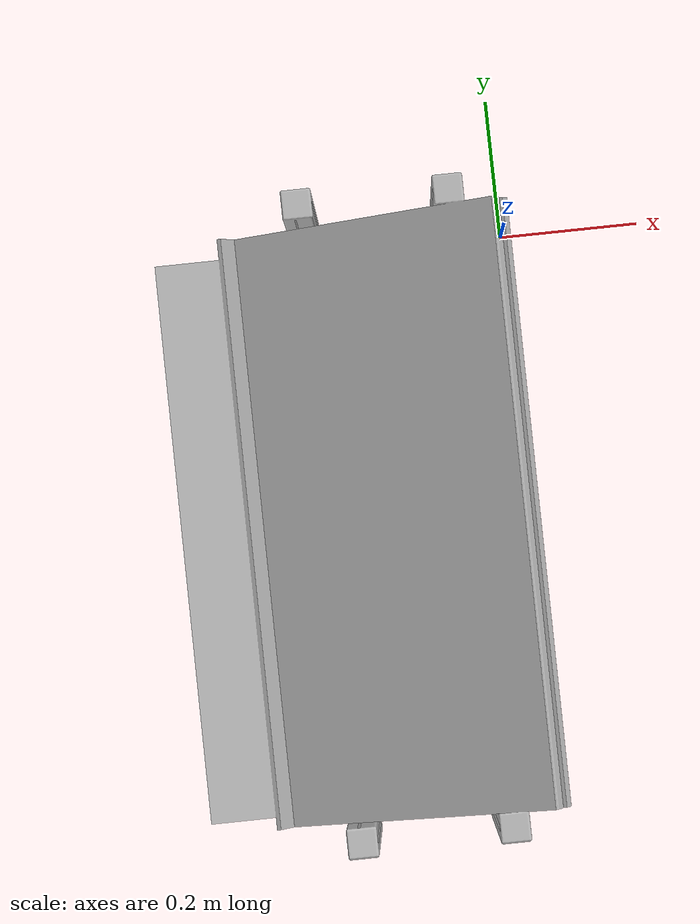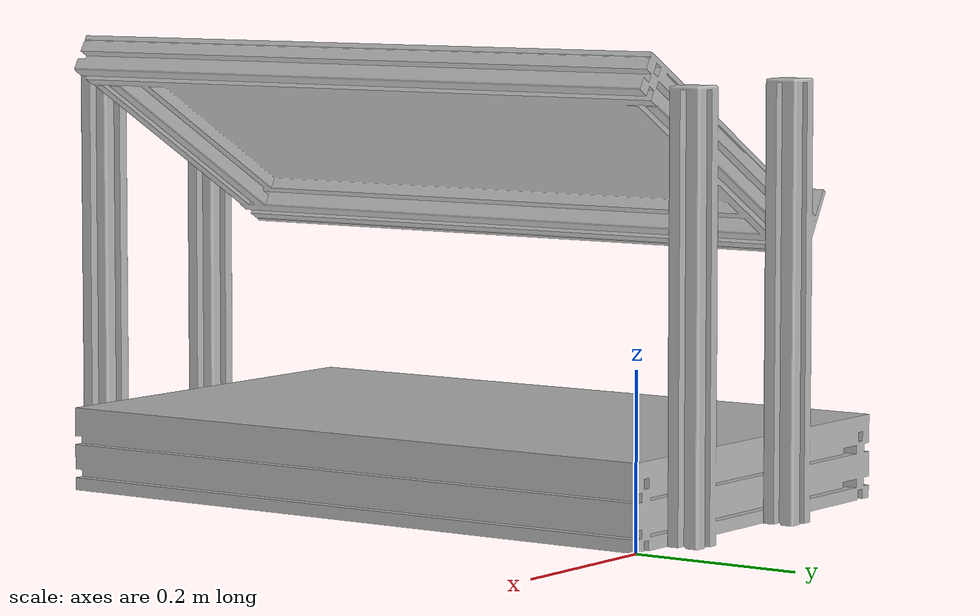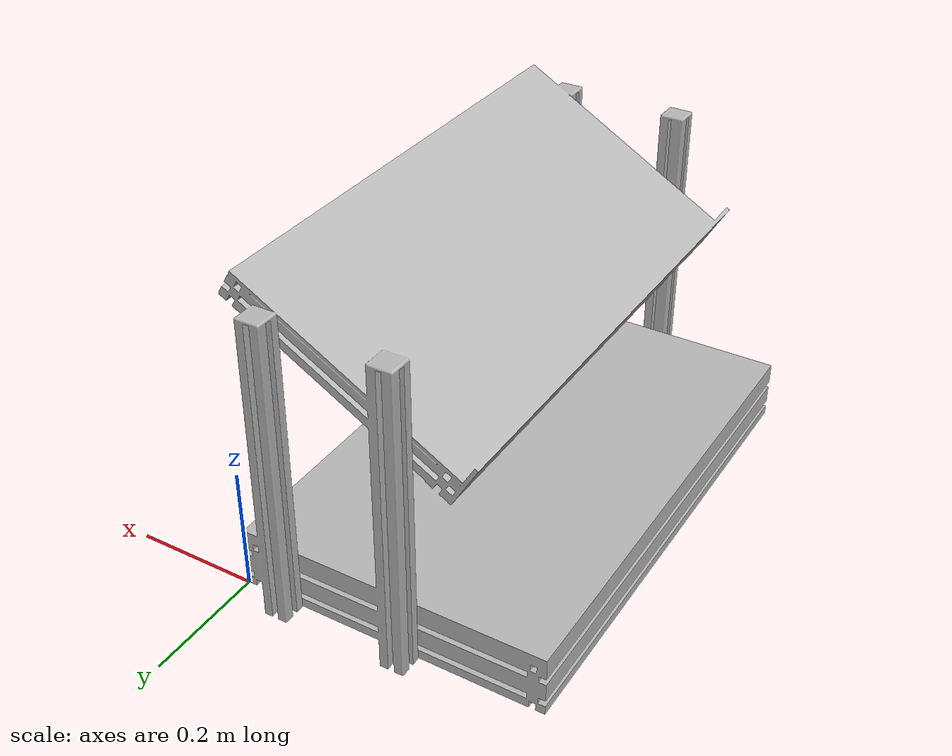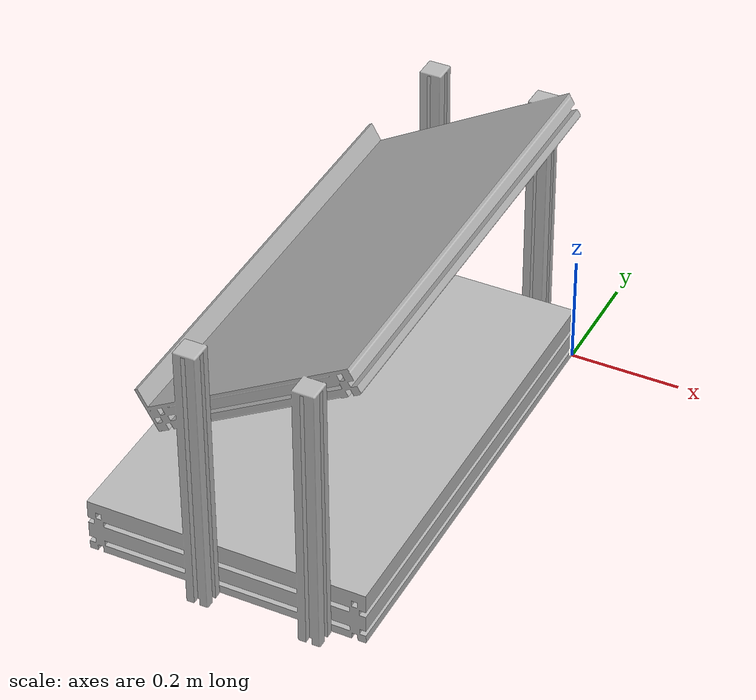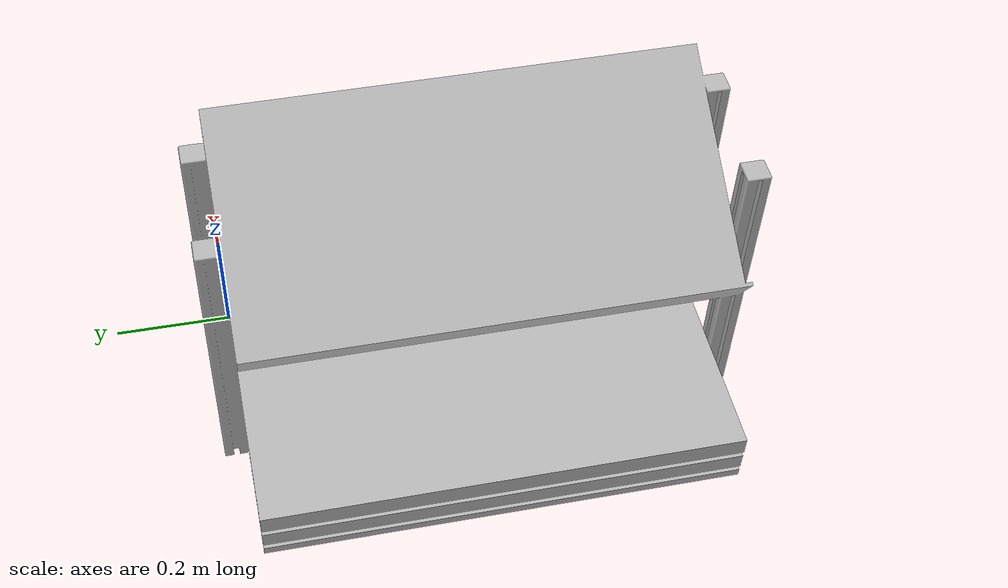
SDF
<?xml version="1.0" ?>
<sdf version="1.5">
  <model name="shelf_assembly_180degree">
    <static>true</static>
    <link name="link">
      <pose>0 0 0 0 0 0</pose>
      <collision name="collision">
        <geometry>
          <mesh>
            <uri>model://shelf_assembly_180degree/meshes/shelf_assembly_180degree.dae</uri>
          </mesh>
        </geometry>
      </collision>
      <visual name="visual">
        <geometry>
          <mesh>
            <uri>model://shelf_assembly_180degree/meshes/shelf_assembly_180degree.dae</uri>
          </mesh>
        </geometry>
      </visual>
    </link>
  </model>
</sdf>
